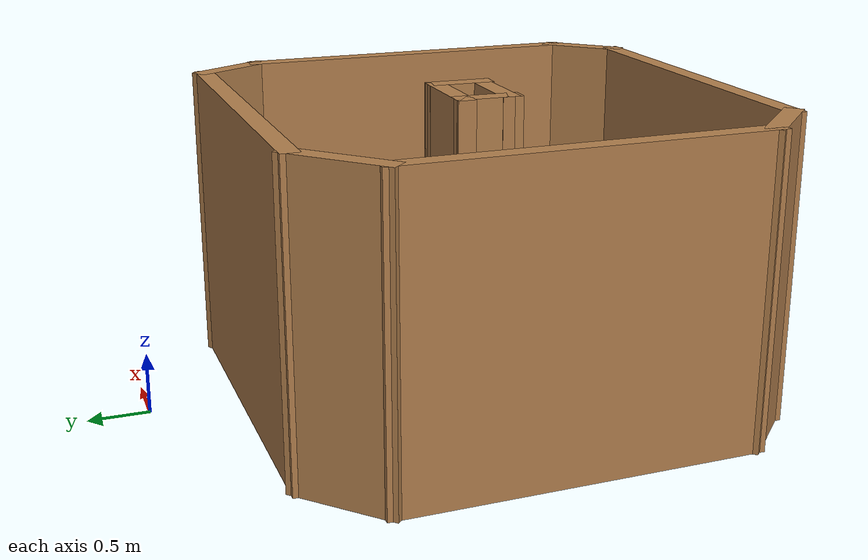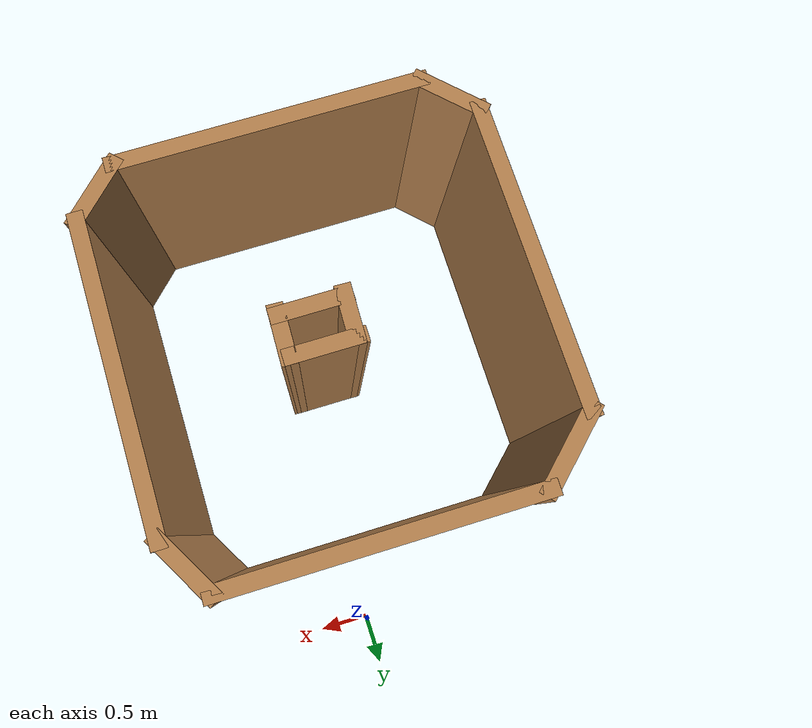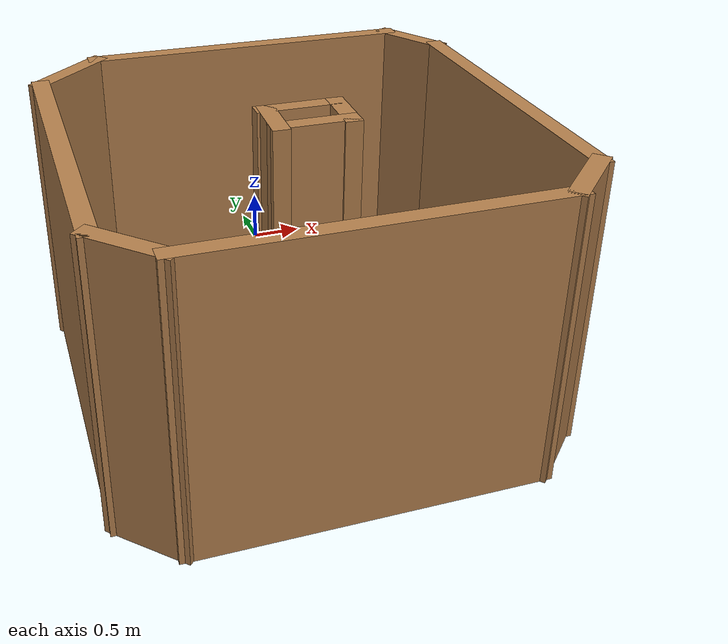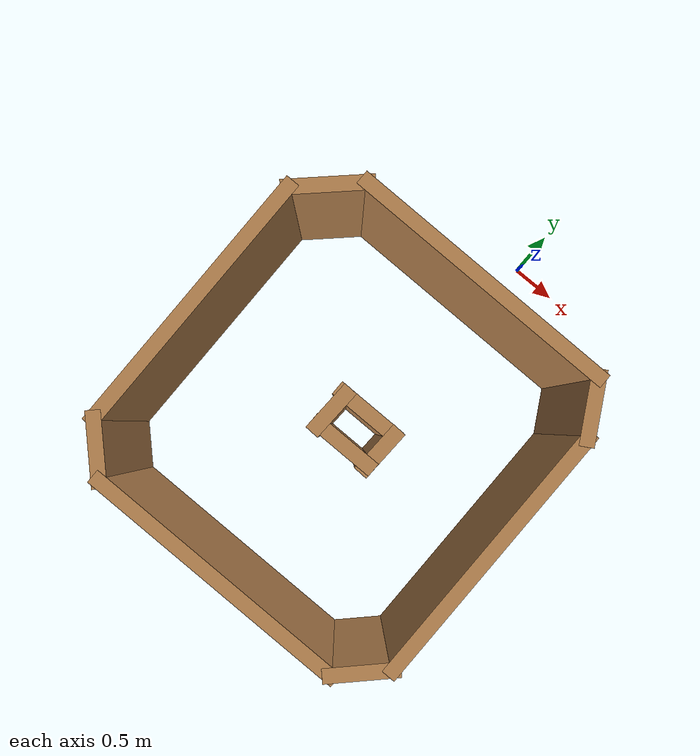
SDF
<?xml version='1.0'?>
<sdf version='1.7'>
  <model name='4walls'>
    <pose>-0.389264 -2.34997 0 0 -0 0</pose>
    <link name='Wall_0'>
      <collision name='Wall_0_Collision'>
        <geometry>
          <box>
            <size>3 0.15 2.5</size>
          </box>
        </geometry>
        <pose>0 0 1.25 0 -0 0</pose>
      </collision>
      <visual name='Wall_0_Visual'>
        <pose>0 0 1.25 0 -0 0</pose>
        <geometry>
          <box>
            <size>3 0.15 2.5</size>
          </box>
        </geometry>
        <material>
          <script>
            <uri>file://media/materials/scripts/gazebo.material</uri>
            <name>Gazebo/Wood</name>
          </script>
          <ambient>1 1 1 1</ambient>
        </material>
        <meta>
          <layer>0</layer>
        </meta>
      </visual>
      <pose>0.124264 1.54997 0 0 -0 0</pose>
    </link>
    <link name='Wall_1'>
      <collision name='Wall_1_Collision'>
        <geometry>
          <box>
            <size>0.75 0.15 2.5</size>
          </box>
        </geometry>
        <pose>0 0 1.25 0 -0 0</pose>
      </collision>
      <visual name='Wall_1_Visual'>
        <pose>0 0 1.25 0 -0 0</pose>
        <geometry>
          <box>
            <size>0.75 0.15 2.5</size>
          </box>
        </geometry>
        <material>
          <script>
            <uri>file://media/materials/scripts/gazebo.material</uri>
            <name>Gazebo/Wood</name>
          </script>
          <ambient>1 1 1 1</ambient>
        </material>
        <meta>
          <layer>0</layer>
        </meta>
      </visual>
      <pose>1.69926 1.29017 0 0 -0 -1.0472</pose>
    </link>
    <link name='Wall_10'>
      <collision name='Wall_10_Collision'>
        <geometry>
          <box>
            <size>0.553117 0.15 2.5</size>
          </box>
        </geometry>
        <pose>0 0 1.25 0 -0 0</pose>
      </collision>
      <visual name='Wall_10_Visual'>
        <pose>0 0 1.25 0 -0 0</pose>
        <geometry>
          <box>
            <size>0.553117 0.15 2.5</size>
          </box>
        </geometry>
        <material>
          <script>
            <uri>file://media/materials/scripts/gazebo.material</uri>
            <name>Gazebo/Wood</name>
          </script>
          <ambient>1 1 1 1</ambient>
        </material>
        <meta>
          <layer>0</layer>
        </meta>
      </visual>
      <pose>-0.176898 -0.320302 0 0 -0 -1.60361</pose>
    </link>
    <link name='Wall_11'>
      <collision name='Wall_11_Collision'>
        <geometry>
          <box>
            <size>0.75 0.15 2.5</size>
          </box>
        </geometry>
        <pose>0 0 1.25 0 -0 0</pose>
      </collision>
      <visual name='Wall_11_Visual'>
        <pose>0 0 1.25 0 -0 0</pose>
        <geometry>
          <box>
            <size>0.75 0.15 2.5</size>
          </box>
        </geometry>
        <material>
          <script>
            <uri>file://media/materials/scripts/gazebo.material</uri>
            <name>Gazebo/Wood</name>
          </script>
          <ambient>1 1 1 1</ambient>
        </material>
        <meta>
          <layer>0</layer>
        </meta>
      </visual>
      <pose>0.116489 -0.495302 0 0 -0 0</pose>
    </link>
    <link name='Wall_12'>
      <collision name='Wall_12_Collision'>
        <geometry>
          <box>
            <size>0.553117 0.15 2.5</size>
          </box>
        </geometry>
        <pose>0 0 1.25 0 -0 0</pose>
      </collision>
      <visual name='Wall_12_Visual'>
        <pose>0 0 1.25 0 -0 0</pose>
        <geometry>
          <box>
            <size>0.553117 0.15 2.5</size>
          </box>
        </geometry>
        <material>
          <script>
            <uri>file://media/materials/scripts/gazebo.material</uri>
            <name>Gazebo/Wood</name>
          </script>
          <ambient>1 1 1 1</ambient>
        </material>
        <meta>
          <layer>0</layer>
        </meta>
      </visual>
      <pose>0.423102 -0.320302 0 0 -0 1.53798</pose>
    </link>
    <link name='Wall_13'>
      <collision name='Wall_13_Collision'>
        <geometry>
          <box>
            <size>0.75 0.15 2.5</size>
          </box>
        </geometry>
        <pose>0 0 1.25 0 -0 0</pose>
      </collision>
      <visual name='Wall_13_Visual'>
        <pose>0 0 1.25 0 -0 0</pose>
        <geometry>
          <box>
            <size>0.75 0.15 2.5</size>
          </box>
        </geometry>
        <material>
          <script>
            <uri>file://media/materials/scripts/gazebo.material</uri>
            <name>Gazebo/Wood</name>
          </script>
          <ambient>1 1 1 1</ambient>
        </material>
        <meta>
          <layer>0</layer>
        </meta>
      </visual>
      <pose>0.103264 -0.118852 0 0 -0 -3.14159</pose>
    </link>
    <link name='Wall_2'>
      <collision name='Wall_2_Collision'>
        <geometry>
          <box>
            <size>3 0.15 2.5</size>
          </box>
        </geometry>
        <pose>0 0 1.25 0 -0 0</pose>
      </collision>
      <visual name='Wall_2_Visual'>
        <pose>0 0 1.25 0 -0 0</pose>
        <geometry>
          <box>
            <size>3 0.15 2.5</size>
          </box>
        </geometry>
        <material>
          <script>
            <uri>file://media/materials/scripts/gazebo.material</uri>
            <name>Gazebo/Wood</name>
          </script>
          <ambient>1 1 1 1</ambient>
        </material>
        <meta>
          <layer>0</layer>
        </meta>
      </visual>
      <pose>1.84926 -0.394643 0 0 -0 -1.5708</pose>
    </link>
    <link name='Wall_4'>
      <collision name='Wall_4_Collision'>
        <geometry>
          <box>
            <size>0.75 0.15 2.5</size>
          </box>
        </geometry>
        <pose>0 0 1.25 0 -0 0</pose>
      </collision>
      <visual name='Wall_4_Visual'>
        <pose>0 0 1.25 0 -0 0</pose>
        <geometry>
          <box>
            <size>0.75 0.15 2.5</size>
          </box>
        </geometry>
        <material>
          <script>
            <uri>file://media/materials/scripts/gazebo.material</uri>
            <name>Gazebo/Wood</name>
          </script>
          <ambient>1 1 1 1</ambient>
        </material>
        <meta>
          <layer>0</layer>
        </meta>
      </visual>
      <pose>1.63713 -2.03178 0 0 -0 -2.35619</pose>
    </link>
    <link name='Wall_5'>
      <collision name='Wall_5_Collision'>
        <geometry>
          <box>
            <size>3 0.15 2.5</size>
          </box>
        </geometry>
        <pose>0 0 1.25 0 -0 0</pose>
      </collision>
      <visual name='Wall_5_Visual'>
        <pose>0 0 1.25 0 -0 0</pose>
        <geometry>
          <box>
            <size>3 0.15 2.5</size>
          </box>
        </geometry>
        <material>
          <script>
            <uri>file://media/materials/scripts/gazebo.material</uri>
            <name>Gazebo/Wood</name>
          </script>
          <ambient>1 1 1 1</ambient>
        </material>
        <meta>
          <layer>0</layer>
        </meta>
      </visual>
      <pose>-0 -2.24391 0 0 -0 3.14159</pose>
    </link>
    <link name='Wall_6'>
      <collision name='Wall_6_Collision'>
        <geometry>
          <box>
            <size>0.75 0.15 2.5</size>
          </box>
        </geometry>
        <pose>0 0 1.25 0 -0 0</pose>
      </collision>
      <visual name='Wall_6_Visual'>
        <pose>0 0 1.25 0 -0 0</pose>
        <geometry>
          <box>
            <size>0.75 0.15 2.5</size>
          </box>
        </geometry>
        <material>
          <script>
            <uri>file://media/materials/scripts/gazebo.material</uri>
            <name>Gazebo/Wood</name>
          </script>
          <ambient>1 1 1 1</ambient>
        </material>
        <meta>
          <layer>0</layer>
        </meta>
      </visual>
      <pose>-1.63713 -2.03178 0 0 -0 2.35619</pose>
    </link>
    <link name='Wall_7'>
      <collision name='Wall_7_Collision'>
        <geometry>
          <box>
            <size>3 0.15 2.5</size>
          </box>
        </geometry>
        <pose>0 0 1.25 0 -0 0</pose>
      </collision>
      <visual name='Wall_7_Visual'>
        <pose>0 0 1.25 0 -0 0</pose>
        <geometry>
          <box>
            <size>3 0.15 2.5</size>
          </box>
        </geometry>
        <material>
          <script>
            <uri>file://media/materials/scripts/gazebo.material</uri>
            <name>Gazebo/Wood</name>
          </script>
          <ambient>1 1 1 1</ambient>
        </material>
        <meta>
          <layer>0</layer>
        </meta>
      </visual>
      <pose>-1.84926 -0.394643 0 0 -0 1.5708</pose>
    </link>
    <link name='Wall_8'>
      <collision name='Wall_8_Collision'>
        <geometry>
          <box>
            <size>0.905568 0.15 2.5</size>
          </box>
        </geometry>
        <pose>0 0 1.25 0 -0 0</pose>
      </collision>
      <visual name='Wall_8_Visual'>
        <pose>0 0 1.25 0 -0 0</pose>
        <geometry>
          <box>
            <size>0.905568 0.15 2.5</size>
          </box>
        </geometry>
        <material>
          <script>
            <uri>file://media/materials/scripts/gazebo.material</uri>
            <name>Gazebo/Wood</name>
          </script>
          <ambient>1 1 1 1</ambient>
        </material>
        <meta>
          <layer>0</layer>
        </meta>
      </visual>
      <pose>-1.575 1.29017 0 0 -0 0.758336</pose>
    </link>
    <static>1</static>
  </model>
</sdf>
